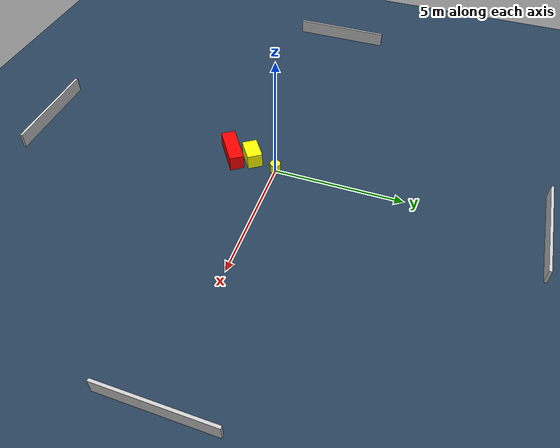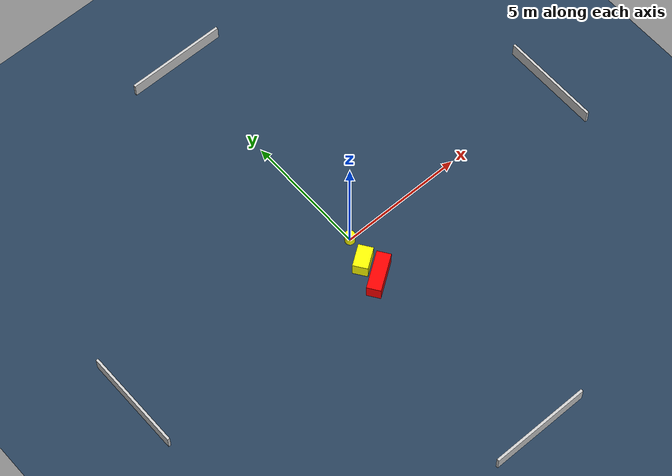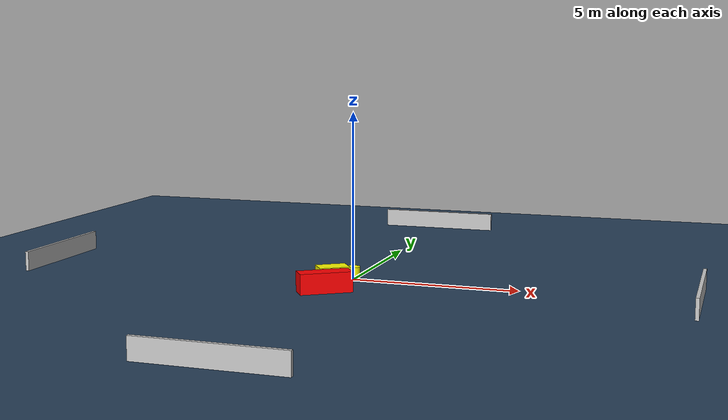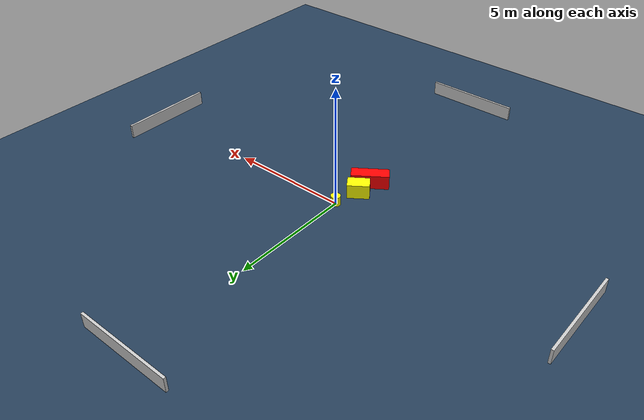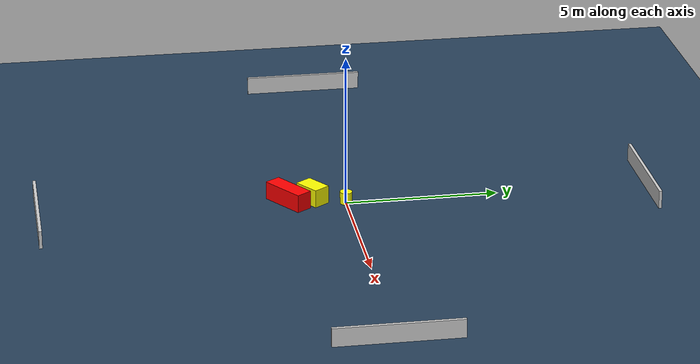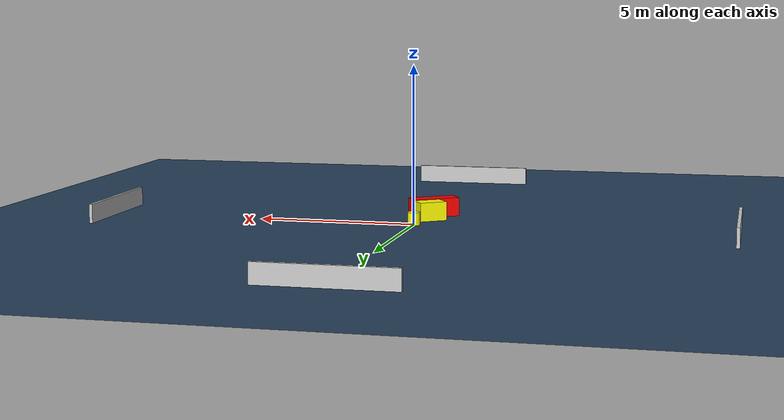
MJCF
<?xml version="1.0" ?>
<mujoco model="generated_environment">
  <option timestep="0.01" integrator="RK4" cone="elliptic"/>
  <default>
    <geom density="1"/>
  </default>
  <asset>
    <texture builtin="gradient" height="3072" name="skybox" rgb1="0.3 0.5 0.7" rgb2="0 0 0" type="skybox" width="512"/>
    <texture builtin="checker" height="300" name="groundplane" rgb1="0.2 0.3 0.4" rgb2="0.1 0.2 0.3" type="2d" width="300"/>
    <material name="groundplane" reflectance="0.2" texrepeat="5 5" texture="groundplane"/>
  </asset>
  <worldbody>
    <light dir="0 0 -1" directional="true" pos="0 0 1.5"/>
    <geom condim="3" friction="0.5 0.005 0.001" material="groundplane" name="floor" pos="0 0 0" size="0 0 0.05" type="plane"/>
    <body name="walls">
      <geom name="wall_1" condim="4" pos="-10.0 0.0 0.3" rgba="0.800000011920929 0.800000011920929 0.800000011920929 1.0" size="0.05 2.0 0.3" type="box"/>
      <geom name="wall_2" condim="4" pos="10.0 0.0 0.3" rgba="0.800000011920929 0.800000011920929 0.800000011920929 1.0" size="0.05 2.0 0.3" type="box"/>
      <geom name="wall_3" condim="4" pos="0.0 -10.0 0.3" rgba="0.800000011920929 0.800000011920929 0.800000011920929 1.0" size="2.0 0.05 0.3" type="box"/>
      <geom name="wall_4" condim="4" pos="0.0 10.0 0.3" rgba="0.800000011920929 0.800000011920929 0.800000011920929 1.0" size="2.0 0.05 0.3" type="box"/>
    </body>
    <body name="robot">
      <joint name="joint_x" type="slide" pos="0 0 0" axis="1 0 0"/>
      <joint name="joint_y" type="slide" pos="0 0 0" axis="0 1 0"/>
      <geom name="robot" type="cylinder" pos="0.0 0.0 0.2" size="0.2 0.2 0.0" mass="5.0" friction="1.0 0.005 0.0001" condim="4" rgba="1.0 1.0 0.0 1.0"/>
    </body>
    <body name="obstacle_1_movable">
      <geom name="obstacle_1_movable" condim="4" pos="-0.28952184365753236 -1.0540488617784494 0.3" euler="0 0 125.04378244092929" friction="0.0 0.005 0.001" rgba="1.0 1.0 0.0 1.0" size="0.2908791482623003 0.44879116388752727 0.3" type="box" mass="0.1"/>
      <joint type="free"/>
    </body>
    <body name="obstacle_2_static">
      <geom name="obstacle_2_static" condim="4" pos="-0.24484083386608857 -1.8615083593324313 0.3" euler="0 0 124.62630796427955" friction="0.0 0.005 0.001" rgba="1.0 0.0 0.0 1.0" size="0.27468825936531827 0.770011294183907 0.3" type="box"/>
    </body>
  </worldbody>
  <actuator>
    <motor name="actuator_x" joint="joint_x" gear="1" ctrlrange="-1 1"/>
    <motor name="actuator_y" joint="joint_y" gear="1" ctrlrange="-1 1"/>
  </actuator>
</mujoco>
